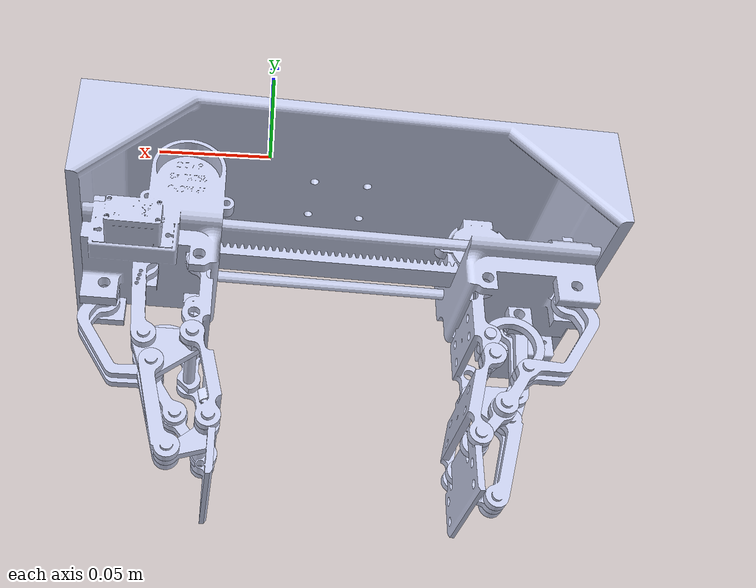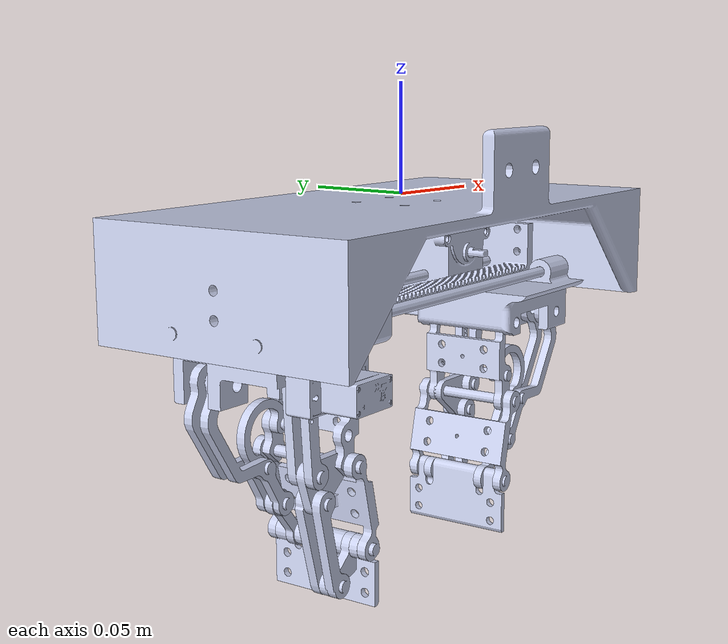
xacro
<?xml version="1.0"?>

<robot xmlns:xacro="http://www.ros.org/wiki/xacro" name="gripper_description">

  <xacro:arg name="controllers_file"
           default="/tmp/controllers.yaml"/>

  <gazebo>
    <plugin
      filename="/opt/ros/jazzy/lib/libgz_ros2_control-system.so"
      name="gz_ros2_control::GazeboSimROS2ControlPlugin">

      <parameters>$(arg controllers_file)</parameters>

    </plugin>
  </gazebo>

<gazebo>
  <self_collide>true</self_collide>
</gazebo>

  <ros2_control name="GazeboSystem" type="system">

    <hardware>
      <plugin>gz_ros2_control/GazeboSimSystem</plugin>
    </hardware>

    <joint name="BR">
      <command_interface name="position"/>
      <state_interface name="position"/>
      <state_interface name="velocity"/>
    </joint>

    <joint name="BL">
      <command_interface name="position"/>
      <state_interface name="position"/>
      <state_interface name="velocity"/>
    </joint>

    <joint name="jR11">
      <command_interface name="position"/>
      <state_interface name="position"/>
      <state_interface name="velocity"/>
    </joint>

    <joint name="jL11">
      <command_interface name="position"/>
      <state_interface name="position"/>
      <state_interface name="velocity"/>
    </joint>

  </ros2_control>

  <xacro:property name="joint_damping" value="0.1"/>
  <xacro:property name="joint_friction" value="0.0"/>
  <link
    name="base_link">
    <inertial>
      <origin
        xyz="-0.0322404009961569 -0.0121839545480329 0.0242001899898715"
        rpy="0 0 0" />
      <mass
        value="1000" />
      <inertia
          ixx="1.492"
          ixy="-0.00339"
          ixz="0.376"
          iyy="8.409"
          iyz="-0.0388"
          izz="7.240"/>
    </inertial>
    <visual>
      <origin
        xyz="0 0 0"
        rpy="0 0 0" />
      <geometry>
        <mesh
          filename="package://gripper_description/meshes/base_link.STL" />
      </geometry>
      <material
        name="">
        <color
          rgba="0.792156862745098 0.819607843137255 0.933333333333333 1" />
      </material>
    </visual>
    <collision>
      <origin
        xyz="0 0 0"
        rpy="0 0 0" />
      <geometry>
        <mesh
          filename="package://gripper_description/meshes/base_link.STL" />
      </geometry>
    </collision>
  </link>
  <link
    name="R0">
    <inertial>
      <origin
        xyz="0.00462701433812369 -0.0042003563347738 -0.0157310959910837"
        rpy="0 0 0" />
      <mass
        value="0.0750116042111743" />
      <inertia
        ixx="1.45347204744741E-05"
        ixy="-9.11265277816875E-07"
        ixz="-2.76020077437339E-07"
        iyy="1.74679741367642E-05"
        iyz="1.97812443216016E-08"
        izz="2.60590712125727E-05" />
    </inertial>
    <visual>
      <origin
        xyz="0 0 0"
        rpy="0 0 0" />
      <geometry>
        <mesh
          filename="package://gripper_description/meshes/R0.STL" />
      </geometry>
      <material
        name="">
        <color
          rgba="0.792156862745098 0.819607843137255 0.933333333333333 1" />
      </material>
    </visual>
    <collision>
      <origin
        xyz="0 0 0"
        rpy="0 0 0" />
      <geometry>
        <mesh
          filename="package://gripper_description/meshes/R0.STL" />
      </geometry>
    </collision>
  </link>
  <joint
    name="BR"
    type="prismatic">
    <origin
      xyz="-0.11531 -0.042524 -0.059709"
      rpy="-3.1416 0 0.065406" />
    <parent
      link="base_link" />
    <child
      link="R0" />
    <axis
      xyz="1 0 0" />
    <limit
      lower="0"
      upper="0.1"
      effort="10"
      velocity="1" />
    <dynamics
    damping="${joint_damping}"
    friction="${joint_friction}"/>
  </joint>
  <link
    name="R11">
    <inertial>
      <origin
        xyz="-0.00148352942504504 -0.000166455445621716 0.0215102433565049"
        rpy="0 0 0" />
      <mass
        value="0.00247788084165121" />
      <inertia
        ixx="4.16684022932768E-07"
        ixy="-9.59529510561512E-23"
        ixz="-4.1534145403795E-09"
        iyy="4.2333409280235E-07"
        iyz="-5.89986571903447E-22"
        izz="2.35170156233658E-08" />
    </inertial>
    <visual>
      <origin
        xyz="0 0 0"
        rpy="0 0 0" />
      <geometry>
        <mesh
          filename="package://gripper_description/meshes/R11.STL" />
      </geometry>
      <material
        name="">
        <color
          rgba="0.792156862745098 0.819607843137255 0.933333333333333 1" />
      </material>
    </visual>
    <collision>
      <origin
        xyz="0 0 0"
        rpy="0 0 0" />
      <geometry>
        <mesh
          filename="package://gripper_description/meshes/R11.STL" />
      </geometry>
    </collision>
  </link>
  <joint
    name="jR11"
    type="revolute">
    <origin
      xyz="0 0 0"
      rpy="0 0.062267 0" />
    <parent
      link="R0" />
    <child
      link="R11" />
    <axis
      xyz="0 -1 0" />
    <limit
      lower="-1.57"
      upper="1.57"
      effort="1000"
      velocity="1" />
    <dynamics
    damping="${joint_damping}"
    friction="${joint_friction}"/>
  </joint>
  <link
    name="R12">
    <inertial>
      <origin
        xyz="0.00684373395702625 5.55111512312578E-17 0.00636062044373634"
        rpy="0 0 0" />
      <mass
        value="0.00154436431180963" />
      <inertia
        ixx="4.41203010878178E-08"
        ixy="6.0384184716371E-23"
        ixz="-1.17256664019142E-10"
        iyy="1.21407436401498E-07"
        iyz="-3.10606320013662E-22"
        izz="8.14054401451723E-08" />
    </inertial>
    <visual>
      <origin
        xyz="0 0 0"
        rpy="0 0 0" />
      <geometry>
        <mesh
          filename="package://gripper_description/meshes/R12.STL" />
      </geometry>
      <material
        name="">
        <color
          rgba="0.792156862745098 0.819607843137255 0.933333333333333 1" />
      </material>
    </visual>
    <collision>
      <origin
        xyz="0 0 0"
        rpy="0 0 0" />
      <geometry>
        <mesh
          filename="package://gripper_description/meshes/R12.STL" />
      </geometry>
    </collision>
  </link>
  <joint
    name="jR12"
    type="revolute">
    <limit
      lower="-3.14159"
      upper="3.14159"
      effort="100"
    velocity="100"/>
    <origin
      xyz="0 0 0.037616"
      rpy="0 0.27082 0" />
    <parent
      link="R11" />
    <child
      link="R12" />
    <axis
      xyz="0 -1 0" />
    <dynamics
    damping="${joint_damping}"
    friction="${joint_friction}"/>
  </joint>
  <link
    name="R13">
    <inertial>
      <origin
        xyz="-0.00129354632500545 -3.12250225675825E-16 0.0188077890894883"
        rpy="0 0 0" />
      <mass
        value="0.00291104044468461" />
      <inertia
        ixx="4.6470048093132E-07"
        ixy="-8.9335506155727E-23"
        ixz="2.28439173971017E-21"
        iyy="4.66918501832891E-07"
        iyz="1.52366668832268E-21"
        izz="3.04993224394877E-08" />
    </inertial>
    <visual>
      <origin
        xyz="0 0 0"
        rpy="0 0 0" />
      <geometry>
        <mesh
          filename="package://gripper_description/meshes/R13.STL" />
      </geometry>
      <material
        name="">
        <color
          rgba="0.792156862745098 0.819607843137255 0.933333333333333 1" />
      </material>
    </visual>
    <collision>
      <origin
        xyz="0 0 0"
        rpy="0 0 0" />
      <geometry>
        <mesh
          filename="package://gripper_description/meshes/R13.STL" />
      </geometry>
    </collision>
  </link>
  <joint
    name="jR13"
    type="revolute">
    <limit
      lower="-3.14159"
      upper="3.14159"
      effort="100"
      velocity="100"/>
    <origin
      xyz="0 0 0.0126984206684708"
      rpy="0 -0.0869779675075645 0" />
    <parent
      link="R12" />
    <child
      link="R13" />
    <axis
      xyz="0 -1 0" />
    <dynamics
    damping="${joint_damping}"
    friction="${joint_friction}"/>
  </joint>
  <link
    name="R14">
    <inertial>
      <origin
        xyz="-0.00159728266465028 -0.000127737938442049 0.00980504402347104"
        rpy="0 0 0" />
      <mass
        value="0.000855794450563546" />
      <inertia
        ixx="4.91644817806748E-08"
        ixy="-6.29366634353681E-11"
        ixz="1.28101257125642E-09"
        iyy="5.61237339035891E-08"
        iyz="-3.82606685454945E-10"
        izz="1.01070819767269E-08" />
    </inertial>
    <visual>
      <origin
        xyz="0 0 0"
        rpy="0 0 0" />
      <geometry>
        <mesh
          filename="package://gripper_description/meshes/R14.STL" />
      </geometry>
      <material
        name="">
        <color
          rgba="0.792156862745098 0.819607843137255 0.933333333333333 1" />
      </material>
    </visual>
    <collision>
      <origin
        xyz="0 0 0"
        rpy="0 0 0" />
      <geometry>
        <mesh
          filename="package://gripper_description/meshes/R14.STL" />
      </geometry>
    </collision>
  </link>
  <joint
    name="jR14"
    type="revolute">
    <limit
      lower="-3.14159"
      upper="3.14159"
      effort="100"
    velocity="100"/>
    <origin
      xyz="0 0 0.0376155781789762"
      rpy="-3.14159265358979 1.13622687888438 -3.14159265358979" />
    <parent
      link="R13" />
    <child
      link="R14" />
    <axis
      xyz="0 -1 0" />
    <dynamics
    damping="${joint_damping}"
    friction="${joint_friction}"/>
  </joint>
  <link
    name="R21">
    <inertial>
      <origin
        xyz="0.00295950346882796 -0.0149386136139195 0.0189032972186492"
        rpy="0 0 0" />
      <mass
        value="0.00383104152389727" />
      <inertia
        ixx="1.27270952699547E-06"
        ixy="1.49758621969911E-10"
        ixz="1.08068040766418E-08"
        iyy="4.60668729964555E-07"
        iyz="5.13769649609066E-10"
        izz="8.83192201545963E-07" />
    </inertial>
    <visual>
      <origin
        xyz="0 0 0"
        rpy="0 0 0" />
      <geometry>
        <mesh
          filename="package://gripper_description/meshes/R21.STL" />
      </geometry>
      <material
        name="">
        <color
          rgba="0.792156862745098 0.819607843137255 0.933333333333333 1" />
      </material>
    </visual>
    <collision>
      <origin
        xyz="0 0 0"
        rpy="0 0 0" />
      <geometry>
        <mesh
          filename="package://gripper_description/meshes/R21.STL" />
      </geometry>
    </collision>
  </link>
  <joint
    name="jR21"
    type="revolute">
    <limit
      lower="-3.14159"
      upper="3.14159"
      effort="100"
    velocity="100"/>
    <origin
      xyz="0.021791 0 0"
      rpy="0 -0.0022637 0" />
    <parent
      link="R0" />
    <child
      link="R21" />
    <axis
      xyz="0 -1 0" />
    <dynamics
    damping="${joint_damping}"
    friction="${joint_friction}"/>
  </joint>
  <link
    name="R22">
    <inertial>
      <origin
        xyz="0.00255512642912835 -0.0147979035481008 0.0193778242116071"
        rpy="0 0 0" />
      <mass
        value="0.00641426678278481" />
      <inertia
        ixx="2.31727374237321E-06"
        ixy="3.7066844920426E-10"
        ixz="-4.93604691847286E-09"
        iyy="5.04145047786201E-07"
        iyz="-1.11263648753588E-10"
        izz="1.87825144784261E-06" />
    </inertial>
    <visual>
      <origin
        xyz="0 0 0"
        rpy="0 0 0" />
      <geometry>
        <mesh
          filename="package://gripper_description/meshes/R22.STL" />
      </geometry>
      <material
        name="">
        <color
          rgba="0.792156862745098 0.819607843137255 0.933333333333333 1" />
      </material>
    </visual>
    <collision>
      <origin
        xyz="0 0 0"
        rpy="0 0 0" />
      <geometry>
        <mesh
          filename="package://gripper_description/meshes/R22.STL" />
      </geometry>
    </collision>
  </link>
  <joint
    name="jR22"
    type="revolute">
    <limit
      lower="-3.14159"
      upper="3.14159"
      effort="100"
    velocity="100"/>
    <origin
      xyz="0 0 0.0375980625533051"
      rpy="0 0.234125795859488 0" />
    <parent
      link="R21" />
    <child
      link="R22" />
    <axis
      xyz="0 1 0" />
    <dynamics
    damping="${joint_damping}"
    friction="${joint_friction}"/>
  </joint>
  <link
    name="R23">
    <inertial>
      <origin
        xyz="0.000725879768722099 -0.0147490918954057 0.00921347775752149"
        rpy="0 0 0" />
      <mass
        value="0.00416085934979352" />
      <inertia
        ixx="1.03788232810775E-06"
        ixy="-1.20969710263363E-09"
        ixz="-3.72096117255084E-08"
        iyy="3.21002104187949E-07"
        iyz="-1.16667048056618E-08"
        izz="7.51361056860196E-07" />
    </inertial>
    <visual>
      <origin
        xyz="0 0 0"
        rpy="0 0 0" />
      <geometry>
        <mesh
          filename="package://gripper_description/meshes/R23.STL" />
      </geometry>
      <material
        name="">
        <color
          rgba="0.792156862745098 0.819607843137255 0.933333333333333 1" />
      </material>
    </visual>
    <collision>
      <origin
        xyz="0 0 0"
        rpy="0 0 0" />
      <geometry>
        <mesh
          filename="package://gripper_description/meshes/R23.STL" />
      </geometry>
    </collision>
  </link>
  <joint
    name="jR23"
    type="revolute">
    <origin
      xyz="0 0 0.037547"
      rpy="0 -0.23186 0" />
    <parent
      link="R22" />
    <child
      link="R23" />
    <axis
      xyz="0 -1 0" />
    <limit
      lower="-1.57"
      upper="1.57"
      effort="10"
      velocity="1" />
    <dynamics
    damping="${joint_damping}"
    friction="${joint_friction}"/>
  </joint>
  <link
    name="R31">
    <inertial>
      <origin
        xyz="-0.00524378805995029 -1.0860583266048E-13 0.0321562998871323"
        rpy="0 0 0" />
      <mass
        value="0.00466986556397568" />
      <inertia
        ixx="2.31207413937099E-06"
        ixy="4.48265717554737E-20"
        ixz="-1.30907661533039E-07"
        iyy="2.48097882210357E-06"
        iyz="2.90506089622565E-20"
        izz="2.01876184588613E-07" />
    </inertial>
    <visual>
      <origin
        xyz="0 0 0"
        rpy="0 0 0" />
      <geometry>
        <mesh
          filename="package://gripper_description/meshes/R31.STL" />
      </geometry>
      <material
        name="">
        <color
          rgba="0.792156862745098 0.819607843137255 0.933333333333333 1" />
      </material>
    </visual>
    <collision>
      <origin
        xyz="0 0 0"
        rpy="0 0 0" />
      <geometry>
        <mesh
          filename="package://gripper_description/meshes/R31.STL" />
      </geometry>
    </collision>
  </link>
  <joint
    name="jR31"
    type="revolute">
    <limit
      lower="-3.14159"
      upper="3.14159"
      effort="100"
    velocity="100"/>
    <origin
      xyz="-0.0181447421942682 -0.0290000000000147 0.000650894535383834"
      rpy="0 0.55680256519482 0" />
    <parent
      link="R0" />
    <child
      link="R31" />
    <axis
      xyz="0 -1 0" />
    <dynamics
    damping="${joint_damping}"
    friction="${joint_friction}"/>
  </joint>
  <link
    name="R311">
    <inertial>
      <origin
        xyz="0.00642701244580534 -1.67140606910365E-15 0.0131810825729761"
        rpy="0 0 0" />
      <mass
        value="0.0012752435112436" />
      <inertia
        ixx="1.04103806667515E-07"
        ixy="-2.27598745543966E-21"
        ixz="-8.73915148640386E-09"
        iyy="1.49169214200332E-07"
        iyz="-2.62251409355343E-20"
        izz="5.87253204055131E-08" />
    </inertial>
    <visual>
      <origin
        xyz="0 0 0"
        rpy="0 0 0" />
      <geometry>
        <mesh
          filename="package://gripper_description/meshes/R311.STL" />
      </geometry>
      <material
        name="">
        <color
          rgba="0.792156862745098 0.819607843137255 0.933333333333333 1" />
      </material>
    </visual>
    <collision>
      <origin
        xyz="0 0 0"
        rpy="0 0 0" />
      <geometry>
        <mesh
          filename="package://gripper_description/meshes/R311.STL" />
      </geometry>
    </collision>
  </link>
  <joint
    name="jR311"
    type="revolute">
    <limit
      lower="-3.14159"
      upper="3.14159"
      effort="100"
    velocity="100"/>
    <origin
      xyz="0 0 0.0461961376509757"
      rpy="3.1415926535887 1.38635179567719 3.14159265358843" />
    <parent
      link="R31" />
    <child
      link="R311" />
    <axis
      xyz="0 -1 0" />
    <dynamics
    damping="${joint_damping}"
    friction="${joint_friction}"/>
  </joint>
  <link
    name="R312">
    <inertial>
      <origin
        xyz="-0.000247761230079246 0.000999999999994579 0.0105701715612085"
        rpy="0 0 0" />
      <mass
        value="0.000789518544793439" />
      <inertia
        ixx="7.3976201887365E-08"
        ixy="-1.65436122510606E-24"
        ixz="-7.30020466664284E-12"
        iyy="7.89102222353134E-08"
        iyz="1.71274725165523E-20"
        izz="7.0394031340644E-09" />
    </inertial>
    <visual>
      <origin
        xyz="0 0 0"
        rpy="0 0 0" />
      <geometry>
        <mesh
          filename="package://gripper_description/meshes/R312.STL" />
      </geometry>
      <material
        name="">
        <color
          rgba="0.792156862745098 0.819607843137255 0.933333333333333 1" />
      </material>
    </visual>
    <collision>
      <origin
        xyz="0 0 0"
        rpy="0 0 0" />
      <geometry>
        <mesh
          filename="package://gripper_description/meshes/R312.STL" />
      </geometry>
    </collision>
  </link>
  <joint
    name="jR312"
    type="revolute">
    <limit
      lower="-3.14159"
      upper="3.14159"
      effort="100"
    velocity="100"/>
    <origin
      xyz="-0.000135085779788074 0 0.0670020264570977"
      rpy="0 0.116288989682376 0" />
    <parent
      link="R31" />
    <child
      link="R312" />
    <axis
      xyz="0 -1 0" />
    <dynamics
    damping="${joint_damping}"
    friction="${joint_friction}"/>
  </joint>
  <link
    name="L0">
    <inertial>
      <origin
        xyz="0.00459139281574747 -0.00420035633785231 -0.0157415296266149"
        rpy="0 0 0" />
      <mass
        value="0.075011604199313" />
      <inertia
        ixx="1.453352990464E-05"
        ixy="-9.11218165462251E-07"
        ixz="-2.49930238647065E-07"
        iyy="1.74679741362087E-05"
        iyz="2.18439775976358E-08"
        izz="2.60602617817316E-05" />
    </inertial>
    <visual>
      <origin
        xyz="0 0 0"
        rpy="0 0 0" />
      <geometry>
        <mesh
          filename="package://gripper_description/meshes/L0.STL" />
      </geometry>
      <material
        name="">
        <color
          rgba="0.792156862745098 0.819607843137255 0.933333333333333 1" />
      </material>
    </visual>
    <collision>
      <origin
        xyz="0 0 0"
        rpy="0 0 0" />
      <geometry>
        <mesh
          filename="package://gripper_description/meshes/L0.STL" />
      </geometry>
    </collision>
  </link>
  <joint
    name="BL"
    type="prismatic">
    <origin
      xyz="0.050495 -0.0018828 -0.059709"
      rpy="-3.1416 0.0022637 -3.0762" />
    <parent
      link="base_link" />
    <child
      link="L0" />
    <axis
      xyz="-1 0 0" />
    <limit
      lower="-0.1"
      upper="0"
      effort="10"
      velocity="1" />
    <dynamics
    damping="${joint_damping}"
    friction="${joint_friction}"/>
  </joint>
  <link
    name="L11">
    <inertial>
      <origin
        xyz="-0.0014835294250448 -0.00016645544562097 0.0215102433565044"
        rpy="0 0 0" />
      <mass
        value="0.002477880841651" />
      <inertia
        ixx="4.1668402293273E-07"
        ixy="-8.9335506155727E-23"
        ixz="-4.15341454037388E-09"
        iyy="4.23334092802313E-07"
        iyz="-1.96243430449377E-21"
        izz="2.35170156233629E-08" />
    </inertial>
    <visual>
      <origin
        xyz="0 0 0"
        rpy="0 0 0" />
      <geometry>
        <mesh
          filename="package://gripper_description/meshes/L11.STL" />
      </geometry>
      <material
        name="">
        <color
          rgba="0.792156862745098 0.819607843137255 0.933333333333333 1" />
      </material>
    </visual>
    <collision>
      <origin
        xyz="0 0 0"
        rpy="0 0 0" />
      <geometry>
        <mesh
          filename="package://gripper_description/meshes/L11.STL" />
      </geometry>
    </collision>
  </link>
  <joint
    name="jL11"
    type="revolute">
    <origin
      xyz="0 0 0"
      rpy="0 0.064531 0" />
    <parent
      link="L0" />
    <child
      link="L11" />
    <axis
      xyz="0 1 0" />
    <limit
      lower="-1.57"
      upper="1.57"
      effort="1000"
      velocity="1" />
    <dynamics
    damping="${joint_damping}"
    friction="${joint_friction}"/>
  </joint>
  <link
    name="L12">
    <inertial>
      <origin
        xyz="0.00684373395702498 1.29323635134071E-15 0.00636062044373874"
        rpy="0 0 0" />
      <mass
        value="0.00154436431180962" />
      <inertia
        ixx="4.41203010878174E-08"
        ixy="-6.41064974728596E-23"
        ixz="-1.17256664030839E-10"
        iyy="1.21407436401499E-07"
        iyz="-4.9475740388328E-22"
        izz="8.14054401451737E-08" />
    </inertial>
    <visual>
      <origin
        xyz="0 0 0"
        rpy="0 0 0" />
      <geometry>
        <mesh
          filename="package://gripper_description/meshes/L12.STL" />
      </geometry>
      <material
        name="">
        <color
          rgba="0.792156862745098 0.819607843137255 0.933333333333333 1" />
      </material>
    </visual>
    <collision>
      <origin
        xyz="0 0 0"
        rpy="0 0 0" />
      <geometry>
        <mesh
          filename="package://gripper_description/meshes/L12.STL" />
      </geometry>
    </collision>
  </link>
  <joint
    name="jL12"
    type="revolute">
    <limit
      lower="-3.14159"
      upper="3.14159"
      effort="100"
    velocity="100"/>
    <origin
      xyz="0 0 0.0376155781789765"
      rpy="0 0.270824776926911 0" />
    <parent
      link="L11" />
    <child
      link="L12" />
    <axis
      xyz="0 -1 0" />
    <dynamics
    damping="${joint_damping}"
    friction="${joint_friction}"/>
  </joint>
  <link
    name="L13">
    <inertial>
      <origin
        xyz="-0.00129354632500561 5.18682319317065E-16 0.018807789089488"
        rpy="0 0 0" />
      <mass
        value="0.0029110404446846" />
      <inertia
        ixx="4.64700480931331E-07"
        ixy="8.10637000301967E-23"
        ixz="1.5605149996725E-21"
        iyy="4.66918501832902E-07"
        iyz="2.63963673223328E-21"
        izz="3.04993224394879E-08" />
    </inertial>
    <visual>
      <origin
        xyz="0 0 0"
        rpy="0 0 0" />
      <geometry>
        <mesh
          filename="package://gripper_description/meshes/L13.STL" />
      </geometry>
      <material
        name="">
        <color
          rgba="0.792156862745098 0.819607843137255 0.933333333333333 1" />
      </material>
    </visual>
    <collision>
      <origin
        xyz="0 0 0"
        rpy="0 0 0" />
      <geometry>
        <mesh
          filename="package://gripper_description/meshes/L13.STL" />
      </geometry>
    </collision>
  </link>
  <joint
    name="jL13"
    type="revolute">
    <limit
      lower="-3.14159"
      upper="3.14159"
      effort="100"
    velocity="100"/>
    <origin
      xyz="0 0 0.0126984206684781"
      rpy="0 -0.086977967507802 0" />
    <parent
      link="L12" />
    <child
      link="L13" />
    <axis
      xyz="0 -1 0" />
    <dynamics
    damping="${joint_damping}"
    friction="${joint_friction}"/>
  </joint>
  <link
    name="L14">
    <inertial>
      <origin
        xyz="-0.00159728266464364 -0.00012773793844099 0.00980504402346934"
        rpy="0 0 0" />
      <mass
        value="0.000855794450563597" />
      <inertia
        ixx="4.91644817806788E-08"
        ixy="-6.29366634352898E-11"
        ixz="1.28101257125914E-09"
        iyy="5.61237339035933E-08"
        iyz="-3.82606685454956E-10"
        izz="1.01070819767276E-08" />
    </inertial>
    <visual>
      <origin
        xyz="0 0 0"
        rpy="0 0 0" />
      <geometry>
        <mesh
          filename="package://gripper_description/meshes/L14.STL" />
      </geometry>
      <material
        name="">
        <color
          rgba="0.792156862745098 0.819607843137255 0.933333333333333 1" />
      </material>
    </visual>
    <collision>
      <origin
        xyz="0 0 0"
        rpy="0 0 0" />
      <geometry>
        <mesh
          filename="package://gripper_description/meshes/L14.STL" />
      </geometry>
    </collision>
  </link>
  <joint
    name="jL14"
    type="revolute">
    <limit
      lower="-3.14159"
      upper="3.14159"
      effort="100"
    velocity="100"/>
    <origin
      xyz="0 0 0.0376155781789763"
      rpy="-3.14159265358979 1.13622687888435 -3.14159265358979" />
    <parent
      link="L13" />
    <child
      link="L14" />
    <axis
      xyz="0 -1 0" />
    <dynamics
    damping="${joint_damping}"
    friction="${joint_friction}"/>
  </joint>
  <link
    name="L21">
    <inertial>
      <origin
        xyz="0.00295950346882547 -0.0149386136139188 0.0189032972186496"
        rpy="0 0 0" />
      <mass
        value="0.00383104152389725" />
      <inertia
        ixx="1.27270952699544E-06"
        ixy="1.49758621969011E-10"
        ixz="1.08068040766976E-08"
        iyy="4.60668729964544E-07"
        iyz="5.13769649602043E-10"
        izz="8.83192201545952E-07" />
    </inertial>
    <visual>
      <origin
        xyz="0 0 0"
        rpy="0 0 0" />
      <geometry>
        <mesh
          filename="package://gripper_description/meshes/L21.STL" />
      </geometry>
      <material
        name="">
        <color
          rgba="0.792156862745098 0.819607843137255 0.933333333333333 1" />
      </material>
    </visual>
    <collision>
      <origin
        xyz="0 0 0"
        rpy="0 0 0" />
      <geometry>
        <mesh
          filename="package://gripper_description/meshes/L21.STL" />
      </geometry>
    </collision>
  </link>
  <joint
    name="jL21"
    type="revolute">
    <limit
      lower="-3.14159"
      upper="3.14159"
      effort="100"
    velocity="100"/>
    <origin
      xyz="0.0217911124180474 0 -4.93275404645499E-05"
      rpy="0 0 0" />
    <parent
      link="L0" />
    <child
      link="L21" />
    <axis
      xyz="0 -1 0" />
    <dynamics
    damping="${joint_damping}"
    friction="${joint_friction}"/>
  </joint>
  <link
    name="L22">
    <inertial>
      <origin
        xyz="0.00255512642912824 -0.0147979035480992 0.019377824211607"
        rpy="0 0 0" />
      <mass
        value="0.00641426678278475" />
      <inertia
        ixx="2.31727374237317E-06"
        ixy="3.70668449202143E-10"
        ixz="-4.93604691847189E-09"
        iyy="5.04145047786165E-07"
        iyz="-1.1126364874968E-10"
        izz="1.8782514478426E-06" />
    </inertial>
    <visual>
      <origin
        xyz="0 0 0"
        rpy="0 0 0" />
      <geometry>
        <mesh
          filename="package://gripper_description/meshes/L22.STL" />
      </geometry>
      <material
        name="">
        <color
          rgba="0.792156862745098 0.819607843137255 0.933333333333333 1" />
      </material>
    </visual>
    <collision>
      <origin
        xyz="0 0 0"
        rpy="0 0 0" />
      <geometry>
        <mesh
          filename="package://gripper_description/meshes/L22.STL" />
      </geometry>
    </collision>
  </link>
  <joint
    name="jL22"
    type="revolute">
    <limit
      lower="-3.14159"
      upper="3.14159"
      effort="100"
    velocity="100"/>
    <origin
      xyz="0 0 0.0375980625533091"
      rpy="0 0.234125795859406 0" />
    <parent
      link="L21" />
    <child
      link="L22" />
    <axis
      xyz="0 1 0" />
    <dynamics
    damping="${joint_damping}"
    friction="${joint_friction}"/>
  </joint>
  <link
    name="L23">
    <inertial>
      <origin
        xyz="0.000725879768930258 -0.0147490918954033 0.00921347775758877"
        rpy="0 0 0" />
      <mass
        value="0.00416085934979353" />
      <inertia
        ixx="1.03788232810765E-06"
        ixy="-1.20969710265183E-09"
        ixz="-3.72096117259404E-08"
        iyy="3.2100210418795E-07"
        iyz="-1.16667048056574E-08"
        izz="7.51361056860309E-07" />
    </inertial>
    <visual>
      <origin
        xyz="0 0 0"
        rpy="0 0 0" />
      <geometry>
        <mesh
          filename="package://gripper_description/meshes/L23.STL" />
      </geometry>
      <material
        name="">
        <color
          rgba="0.792156862745098 0.819607843137255 0.933333333333333 1" />
      </material>
    </visual>
    <collision>
      <origin
        xyz="0 0 0"
        rpy="0 0 0" />
      <geometry>
        <mesh
          filename="package://gripper_description/meshes/L23.STL" />
      </geometry>
    </collision>
  </link>
  <joint
    name="jL23"
    type="revolute">
    <origin
      xyz="0 0 0.037547"
      rpy="0 -0.23186 0" />
    <parent
      link="L22" />
    <child
      link="L23" />
    <axis
      xyz="0 -1 0" />
    <limit
      lower="-1.57"
      upper="1.57"
      effort="10"
      velocity="1" />
    <dynamics
    damping="${joint_damping}"
    friction="${joint_friction}"/>
  </joint>
  <link
    name="L31">
    <inertial>
      <origin
        xyz="-0.00524378805995215 -1.0861450627786E-13 0.0321562998871508"
        rpy="0 0 0" />
      <mass
        value="0.00466986556397559" />
      <inertia
        ixx="2.3120741393709E-06"
        ixy="4.54221417965119E-20"
        ixz="-1.30907661533328E-07"
        iyy="2.48097882210352E-06"
        iyz="2.95884573061749E-20"
        izz="2.01876184588644E-07" />
    </inertial>
    <visual>
      <origin
        xyz="0 0 0"
        rpy="0 0 0" />
      <geometry>
        <mesh
          filename="package://gripper_description/meshes/L31.STL" />
      </geometry>
      <material
        name="">
        <color
          rgba="0.792156862745098 0.819607843137255 0.933333333333333 1" />
      </material>
    </visual>
    <collision>
      <origin
        xyz="0 0 0"
        rpy="0 0 0" />
      <geometry>
        <mesh
          filename="package://gripper_description/meshes/L31.STL" />
      </geometry>
    </collision>
  </link>
  <joint
    name="jL31"
    type="revolute">
    <limit
      lower="-3.14159"
      upper="3.14159"
      effort="100"
    velocity="100"/>
    <origin
      xyz="-0.0181432223101448 -0.0290000000000167 0.000691966182159762"
      rpy="0 0.55906621540524 0" />
    <parent
      link="L0" />
    <child
      link="L31" />
    <axis
      xyz="0 -1 0" />
    <dynamics
    damping="${joint_damping}"
    friction="${joint_friction}"/>
  </joint>
  <link
    name="L311">
    <inertial>
      <origin
        xyz="0.00642701244581147 3.71924713249427E-15 0.0131810825729814"
        rpy="0 0 0" />
      <mass
        value="0.00127524351124365" />
      <inertia
        ixx="1.04103806667531E-07"
        ixy="-2.57005016320226E-21"
        ixz="-8.73915148636982E-09"
        iyy="1.49169214200336E-07"
        iyz="-2.68132663510595E-20"
        izz="5.87253204055011E-08" />
    </inertial>
    <visual>
      <origin
        xyz="0 0 0"
        rpy="0 0 0" />
      <geometry>
        <mesh
          filename="package://gripper_description/meshes/L311.STL" />
      </geometry>
      <material
        name="">
        <color
          rgba="0.792156862745098 0.819607843137255 0.933333333333333 1" />
      </material>
    </visual>
    <collision>
      <origin
        xyz="0 0 0"
        rpy="0 0 0" />
      <geometry>
        <mesh
          filename="package://gripper_description/meshes/L311.STL" />
      </geometry>
    </collision>
  </link>
  <joint
    name="jL311"
    type="revolute">
    <limit
      lower="-3.14159"
      upper="3.14159"
      effort="100"
    velocity="100"/>
    <origin
      xyz="0 0 0.0461961376509927"
      rpy="3.14159265358874 1.3863517956764 3.14159265358846" />
    <parent
      link="L31" />
    <child
      link="L311" />
    <axis
      xyz="0 -1 0" />
    <dynamics
    damping="${joint_damping}"
    friction="${joint_friction}"/>
  </joint>
  <link
    name="L312">
    <inertial>
      <origin
        xyz="-0.00024776123009515 0.000999999999999189 0.010570171561165"
        rpy="0 0 0" />
      <mass
        value="0.000789518544793503" />
      <inertia
        ixx="7.39762018873715E-08"
        ixy="9.51257704435982E-24"
        ixz="-7.30020461555165E-12"
        iyy="7.89102222353199E-08"
        iyz="1.55239828991182E-20"
        izz="7.0394031340651E-09" />
    </inertial>
    <visual>
      <origin
        xyz="0 0 0"
        rpy="0 0 0" />
      <geometry>
        <mesh
          filename="package://gripper_description/meshes/L312.STL" />
      </geometry>
      <material
        name="">
        <color
          rgba="0.792156862745098 0.819607843137255 0.933333333333333 1" />
      </material>
    </visual>
    <collision>
      <origin
        xyz="0 0 0"
        rpy="0 0 0" />
      <geometry>
        <mesh
          filename="package://gripper_description/meshes/L312.STL" />
      </geometry>
    </collision>
  </link>
  <joint
    name="jL312"
    type="revolute">
    <limit
      lower="-3.14159"
      upper="3.14159"
      effort="100"
    velocity="100"/>
    <origin
      xyz="-0.000135085779785257 0 0.0670020264571147"
      rpy="0 0.116288989682994 0" />
    <parent
      link="L31" />
    <child
      link="L312" />
    <axis
      xyz="0 -1 0" />
    <dynamics
    damping="${joint_damping}"
    friction="${joint_friction}"/>
  </joint>
</robot>
